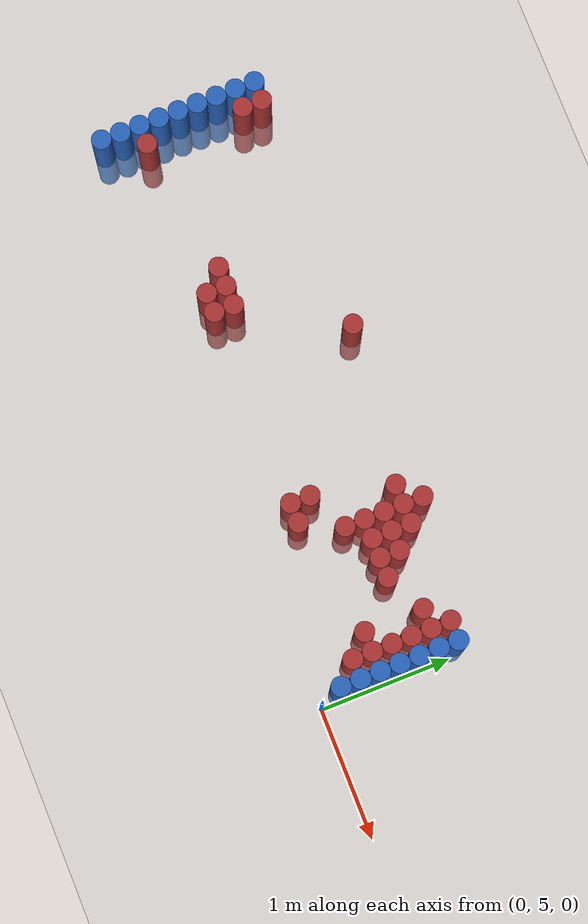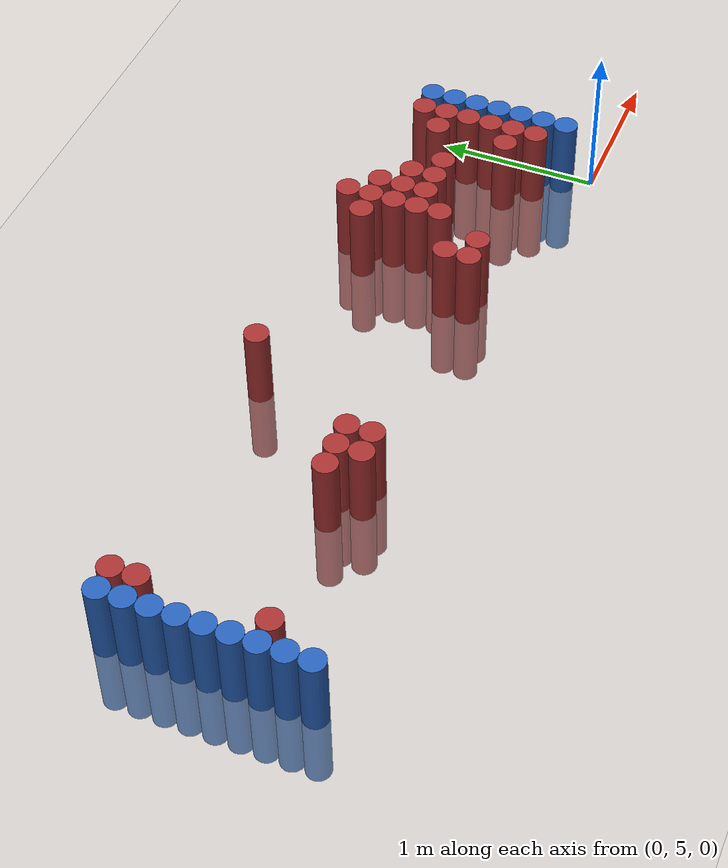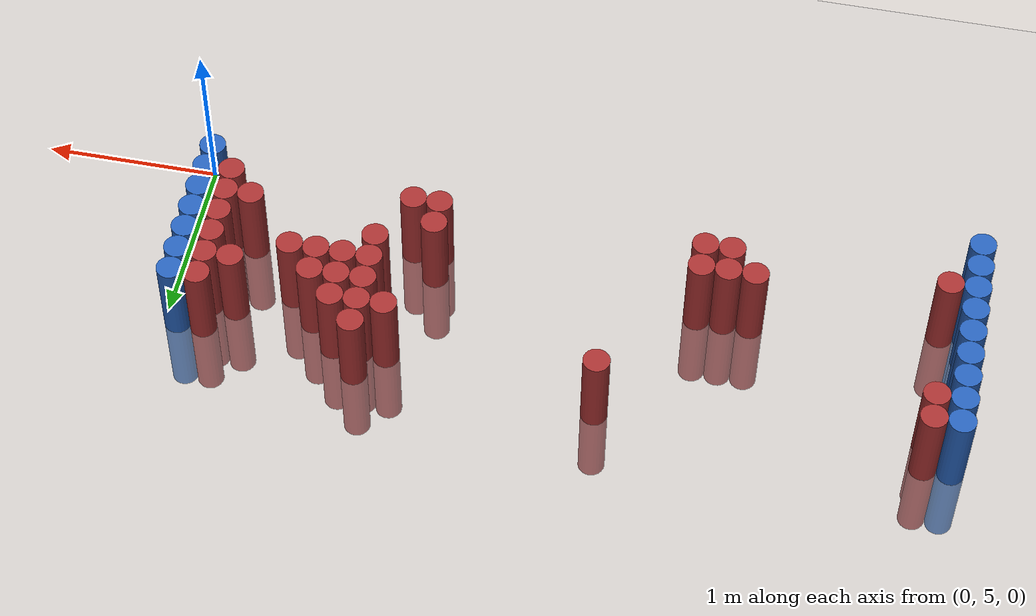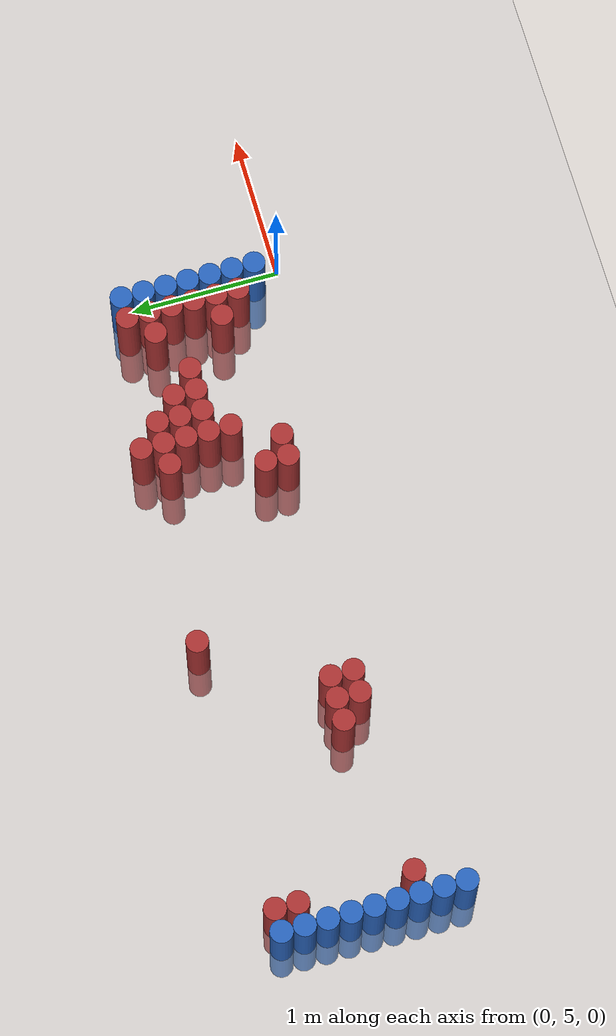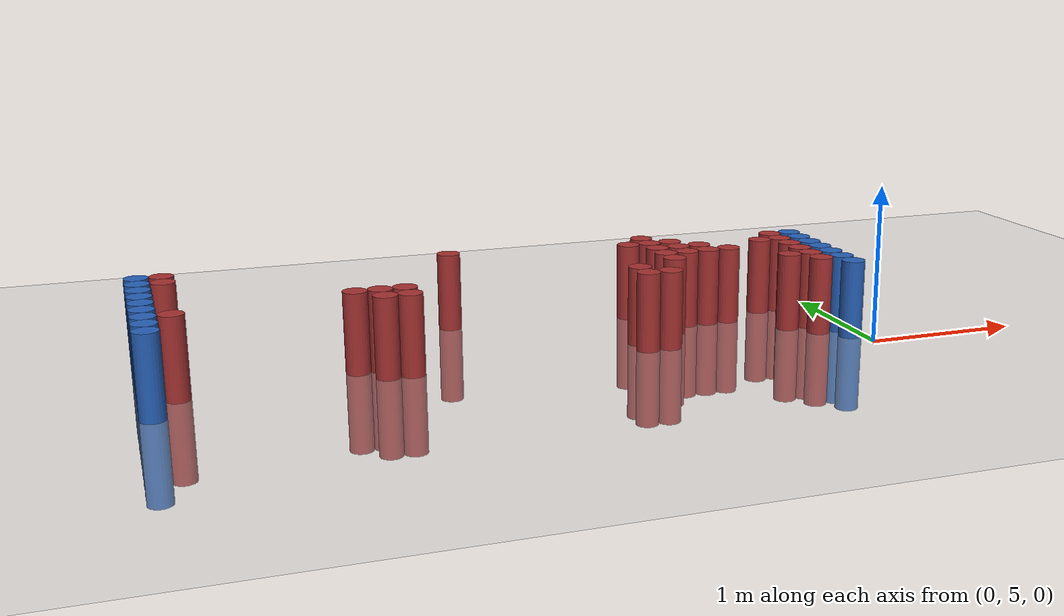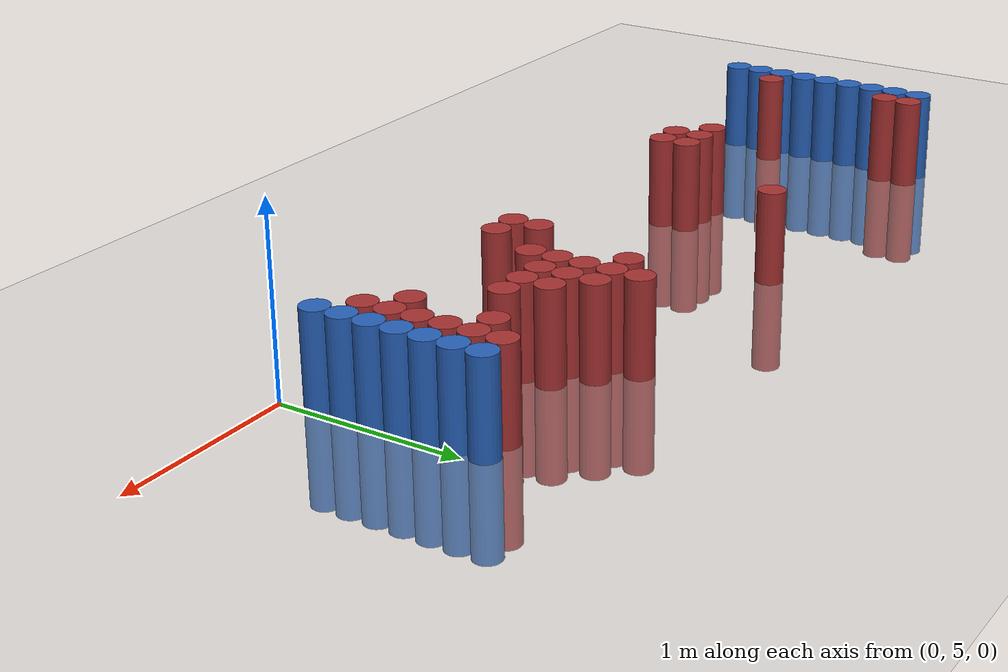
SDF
<sdf version="1.6">
 <world name="default">
  <model name="ground_plane">
   <static>1</static>
   <link name="link">
    <collision name="collision">
     <geometry><plane><normal>0 0 1</normal><size>100 100</size></plane></geometry>
     <surface><friction><ode><mu>100</mu><mu2>50</mu2></ode></friction></surface>
    </collision>
    <visual name="visual">
     <cast_shadows>0</cast_shadows>
     <geometry><plane><normal>0 0 1</normal><size>100 100</size></plane></geometry>
     <material>
      <script><uri>file://media/materials/scripts/gazebo.material</uri><name>Gazebo/Grey</name></script>
     </material>
    </visual>
   </link>
  </model>
  <model name="unit_cylinder_95">
   <static>1</static>
   <pose>-4.425000 5.025000 0.000000 0.000000 0.000000 0.000000</pose>
   <link name="link">
    <inertial>
     <mass>1</mass>
     <inertia><ixx>0.145833</ixx><ixy>0</ixy><ixz>0</ixz><iyy>0.145833</iyy><iyz>0</iyz><izz>0.125</izz></inertia>
    </inertial>
    <collision name="collision">
     <geometry><cylinder><radius>0.075000</radius><length>1</length></cylinder></geometry>
    </collision>
    <visual name="visual">
     <geometry><cylinder><radius>0.075000</radius><length>1</length></cylinder></geometry>
     <material>
      <ambient>0.152000 0.379000 0.720000 1</ambient>
      <diffuse>0.152000 0.379000 0.720000 1</diffuse>
     </material>
     <material>
      <script><name>Gazebo/Grey</name><uri>file://media/materials/scripts/gazebo.material</uri></script>
     </material>
    </visual>
   </link>
  </model>
  <model name="unit_cylinder_96">
   <static>1</static>
   <pose>-4.425000 5.175000 0.000000 0.000000 0.000000 0.000000</pose>
   <link name="link">
    <inertial>
     <mass>1</mass>
     <inertia><ixx>0.145833</ixx><ixy>0</ixy><ixz>0</ixz><iyy>0.145833</iyy><iyz>0</iyz><izz>0.125</izz></inertia>
    </inertial>
    <collision name="collision">
     <geometry><cylinder><radius>0.075000</radius><length>1</length></cylinder></geometry>
    </collision>
    <visual name="visual">
     <geometry><cylinder><radius>0.075000</radius><length>1</length></cylinder></geometry>
     <material>
      <ambient>0.152000 0.379000 0.720000 1</ambient>
      <diffuse>0.152000 0.379000 0.720000 1</diffuse>
     </material>
     <material>
      <script><name>Gazebo/Grey</name><uri>file://media/materials/scripts/gazebo.material</uri></script>
     </material>
    </visual>
   </link>
  </model>
  <model name="unit_cylinder_97">
   <static>1</static>
   <pose>-4.425000 5.325000 0.000000 0.000000 0.000000 0.000000</pose>
   <link name="link">
    <inertial>
     <mass>1</mass>
     <inertia><ixx>0.145833</ixx><ixy>0</ixy><ixz>0</ixz><iyy>0.145833</iyy><iyz>0</iyz><izz>0.125</izz></inertia>
    </inertial>
    <collision name="collision">
     <geometry><cylinder><radius>0.075000</radius><length>1</length></cylinder></geometry>
    </collision>
    <visual name="visual">
     <geometry><cylinder><radius>0.075000</radius><length>1</length></cylinder></geometry>
     <material>
      <ambient>0.152000 0.379000 0.720000 1</ambient>
      <diffuse>0.152000 0.379000 0.720000 1</diffuse>
     </material>
     <material>
      <script><name>Gazebo/Grey</name><uri>file://media/materials/scripts/gazebo.material</uri></script>
     </material>
    </visual>
   </link>
  </model>
  <model name="unit_cylinder_98">
   <static>1</static>
   <pose>-4.425000 5.475000 0.000000 0.000000 0.000000 0.000000</pose>
   <link name="link">
    <inertial>
     <mass>1</mass>
     <inertia><ixx>0.145833</ixx><ixy>0</ixy><ixz>0</ixz><iyy>0.145833</iyy><iyz>0</iyz><izz>0.125</izz></inertia>
    </inertial>
    <collision name="collision">
     <geometry><cylinder><radius>0.075000</radius><length>1</length></cylinder></geometry>
    </collision>
    <visual name="visual">
     <geometry><cylinder><radius>0.075000</radius><length>1</length></cylinder></geometry>
     <material>
      <ambient>0.152000 0.379000 0.720000 1</ambient>
      <diffuse>0.152000 0.379000 0.720000 1</diffuse>
     </material>
     <material>
      <script><name>Gazebo/Grey</name><uri>file://media/materials/scripts/gazebo.material</uri></script>
     </material>
    </visual>
   </link>
  </model>
  <model name="unit_cylinder_99">
   <static>1</static>
   <pose>-4.425000 5.625000 0.000000 0.000000 0.000000 0.000000</pose>
   <link name="link">
    <inertial>
     <mass>1</mass>
     <inertia><ixx>0.145833</ixx><ixy>0</ixy><ixz>0</ixz><iyy>0.145833</iyy><iyz>0</iyz><izz>0.125</izz></inertia>
    </inertial>
    <collision name="collision">
     <geometry><cylinder><radius>0.075000</radius><length>1</length></cylinder></geometry>
    </collision>
    <visual name="visual">
     <geometry><cylinder><radius>0.075000</radius><length>1</length></cylinder></geometry>
     <material>
      <ambient>0.152000 0.379000 0.720000 1</ambient>
      <diffuse>0.152000 0.379000 0.720000 1</diffuse>
     </material>
     <material>
      <script><name>Gazebo/Grey</name><uri>file://media/materials/scripts/gazebo.material</uri></script>
     </material>
    </visual>
   </link>
  </model>
  <model name="unit_cylinder_100">
   <static>1</static>
   <pose>-4.425000 5.775000 0.000000 0.000000 0.000000 0.000000</pose>
   <link name="link">
    <inertial>
     <mass>1</mass>
     <inertia><ixx>0.145833</ixx><ixy>0</ixy><ixz>0</ixz><iyy>0.145833</iyy><iyz>0</iyz><izz>0.125</izz></inertia>
    </inertial>
    <collision name="collision">
     <geometry><cylinder><radius>0.075000</radius><length>1</length></cylinder></geometry>
    </collision>
    <visual name="visual">
     <geometry><cylinder><radius>0.075000</radius><length>1</length></cylinder></geometry>
     <material>
      <ambient>0.152000 0.379000 0.720000 1</ambient>
      <diffuse>0.152000 0.379000 0.720000 1</diffuse>
     </material>
     <material>
      <script><name>Gazebo/Grey</name><uri>file://media/materials/scripts/gazebo.material</uri></script>
     </material>
    </visual>
   </link>
  </model>
  <model name="unit_cylinder_101">
   <static>1</static>
   <pose>-4.425000 5.925000 0.000000 0.000000 0.000000 0.000000</pose>
   <link name="link">
    <inertial>
     <mass>1</mass>
     <inertia><ixx>0.145833</ixx><ixy>0</ixy><ixz>0</ixz><iyy>0.145833</iyy><iyz>0</iyz><izz>0.125</izz></inertia>
    </inertial>
    <collision name="collision">
     <geometry><cylinder><radius>0.075000</radius><length>1</length></cylinder></geometry>
    </collision>
    <visual name="visual">
     <geometry><cylinder><radius>0.075000</radius><length>1</length></cylinder></geometry>
     <material>
      <ambient>0.152000 0.379000 0.720000 1</ambient>
      <diffuse>0.152000 0.379000 0.720000 1</diffuse>
     </material>
     <material>
      <script><name>Gazebo/Grey</name><uri>file://media/materials/scripts/gazebo.material</uri></script>
     </material>
    </visual>
   </link>
  </model>
  <model name="unit_cylinder_102">
   <static>1</static>
   <pose>-4.425000 6.075000 0.000000 0.000000 0.000000 0.000000</pose>
   <link name="link">
    <inertial>
     <mass>1</mass>
     <inertia><ixx>0.145833</ixx><ixy>0</ixy><ixz>0</ixz><iyy>0.145833</iyy><iyz>0</iyz><izz>0.125</izz></inertia>
    </inertial>
    <collision name="collision">
     <geometry><cylinder><radius>0.075000</radius><length>1</length></cylinder></geometry>
    </collision>
    <visual name="visual">
     <geometry><cylinder><radius>0.075000</radius><length>1</length></cylinder></geometry>
     <material>
      <ambient>0.152000 0.379000 0.720000 1</ambient>
      <diffuse>0.152000 0.379000 0.720000 1</diffuse>
     </material>
     <material>
      <script><name>Gazebo/Grey</name><uri>file://media/materials/scripts/gazebo.material</uri></script>
     </material>
    </visual>
   </link>
  </model>
  <model name="unit_cylinder_103">
   <static>1</static>
   <pose>-4.425000 6.225000 0.000000 0.000000 0.000000 0.000000</pose>
   <link name="link">
    <inertial>
     <mass>1</mass>
     <inertia><ixx>0.145833</ixx><ixy>0</ixy><ixz>0</ixz><iyy>0.145833</iyy><iyz>0</iyz><izz>0.125</izz></inertia>
    </inertial>
    <collision name="collision">
     <geometry><cylinder><radius>0.075000</radius><length>1</length></cylinder></geometry>
    </collision>
    <visual name="visual">
     <geometry><cylinder><radius>0.075000</radius><length>1</length></cylinder></geometry>
     <material>
      <ambient>0.152000 0.379000 0.720000 1</ambient>
      <diffuse>0.152000 0.379000 0.720000 1</diffuse>
     </material>
     <material>
      <script><name>Gazebo/Grey</name><uri>file://media/materials/scripts/gazebo.material</uri></script>
     </material>
    </visual>
   </link>
  </model>
  <model name="unit_cylinder_126">
   <static>1</static>
   <pose>-4.275000 5.325000 0.000000 0.000000 0.000000 0.000000</pose>
   <link name="link">
    <inertial>
     <mass>1</mass>
     <inertia><ixx>0.145833</ixx><ixy>0</ixy><ixz>0</ixz><iyy>0.145833</iyy><iyz>0</iyz><izz>0.125</izz></inertia>
    </inertial>
    <collision name="collision">
     <geometry><cylinder><radius>0.075000</radius><length>1</length></cylinder></geometry>
    </collision>
    <visual name="visual">
     <geometry><cylinder><radius>0.075000</radius><length>1</length></cylinder></geometry>
     <material>
      <ambient>0.648000 0.192000 0.192000 1</ambient>
      <diffuse>0.648000 0.192000 0.192000 1</diffuse>
     </material>
     <material>
      <script><name>Gazebo/Grey</name><uri>file://media/materials/scripts/gazebo.material</uri></script>
     </material>
    </visual>
   </link>
  </model>
  <model name="unit_cylinder_127">
   <static>1</static>
   <pose>-4.275000 6.075000 0.000000 0.000000 0.000000 0.000000</pose>
   <link name="link">
    <inertial>
     <mass>1</mass>
     <inertia><ixx>0.145833</ixx><ixy>0</ixy><ixz>0</ixz><iyy>0.145833</iyy><iyz>0</iyz><izz>0.125</izz></inertia>
    </inertial>
    <collision name="collision">
     <geometry><cylinder><radius>0.075000</radius><length>1</length></cylinder></geometry>
    </collision>
    <visual name="visual">
     <geometry><cylinder><radius>0.075000</radius><length>1</length></cylinder></geometry>
     <material>
      <ambient>0.648000 0.192000 0.192000 1</ambient>
      <diffuse>0.648000 0.192000 0.192000 1</diffuse>
     </material>
     <material>
      <script><name>Gazebo/Grey</name><uri>file://media/materials/scripts/gazebo.material</uri></script>
     </material>
    </visual>
   </link>
  </model>
  <model name="unit_cylinder_128">
   <static>1</static>
   <pose>-4.275000 6.225000 0.000000 0.000000 0.000000 0.000000</pose>
   <link name="link">
    <inertial>
     <mass>1</mass>
     <inertia><ixx>0.145833</ixx><ixy>0</ixy><ixz>0</ixz><iyy>0.145833</iyy><iyz>0</iyz><izz>0.125</izz></inertia>
    </inertial>
    <collision name="collision">
     <geometry><cylinder><radius>0.075000</radius><length>1</length></cylinder></geometry>
    </collision>
    <visual name="visual">
     <geometry><cylinder><radius>0.075000</radius><length>1</length></cylinder></geometry>
     <material>
      <ambient>0.648000 0.192000 0.192000 1</ambient>
      <diffuse>0.648000 0.192000 0.192000 1</diffuse>
     </material>
     <material>
      <script><name>Gazebo/Grey</name><uri>file://media/materials/scripts/gazebo.material</uri></script>
     </material>
    </visual>
   </link>
  </model>
  <model name="unit_cylinder_151">
   <static>1</static>
   <pose>-3.225000 5.475000 0.000000 0.000000 0.000000 0.000000</pose>
   <link name="link">
    <inertial>
     <mass>1</mass>
     <inertia><ixx>0.145833</ixx><ixy>0</ixy><ixz>0</ixz><iyy>0.145833</iyy><iyz>0</iyz><izz>0.125</izz></inertia>
    </inertial>
    <collision name="collision">
     <geometry><cylinder><radius>0.075000</radius><length>1</length></cylinder></geometry>
    </collision>
    <visual name="visual">
     <geometry><cylinder><radius>0.075000</radius><length>1</length></cylinder></geometry>
     <material>
      <ambient>0.648000 0.192000 0.192000 1</ambient>
      <diffuse>0.648000 0.192000 0.192000 1</diffuse>
     </material>
     <material>
      <script><name>Gazebo/Grey</name><uri>file://media/materials/scripts/gazebo.material</uri></script>
     </material>
    </visual>
   </link>
  </model>
  <model name="unit_cylinder_152">
   <static>1</static>
   <pose>-3.075000 5.325000 0.000000 0.000000 0.000000 0.000000</pose>
   <link name="link">
    <inertial>
     <mass>1</mass>
     <inertia><ixx>0.145833</ixx><ixy>0</ixy><ixz>0</ixz><iyy>0.145833</iyy><iyz>0</iyz><izz>0.125</izz></inertia>
    </inertial>
    <collision name="collision">
     <geometry><cylinder><radius>0.075000</radius><length>1</length></cylinder></geometry>
    </collision>
    <visual name="visual">
     <geometry><cylinder><radius>0.075000</radius><length>1</length></cylinder></geometry>
     <material>
      <ambient>0.648000 0.192000 0.192000 1</ambient>
      <diffuse>0.648000 0.192000 0.192000 1</diffuse>
     </material>
     <material>
      <script><name>Gazebo/Grey</name><uri>file://media/materials/scripts/gazebo.material</uri></script>
     </material>
    </visual>
   </link>
  </model>
  <model name="unit_cylinder_153">
   <static>1</static>
   <pose>-3.075000 5.475000 0.000000 0.000000 0.000000 0.000000</pose>
   <link name="link">
    <inertial>
     <mass>1</mass>
     <inertia><ixx>0.145833</ixx><ixy>0</ixy><ixz>0</ixz><iyy>0.145833</iyy><iyz>0</iyz><izz>0.125</izz></inertia>
    </inertial>
    <collision name="collision">
     <geometry><cylinder><radius>0.075000</radius><length>1</length></cylinder></geometry>
    </collision>
    <visual name="visual">
     <geometry><cylinder><radius>0.075000</radius><length>1</length></cylinder></geometry>
     <material>
      <ambient>0.648000 0.192000 0.192000 1</ambient>
      <diffuse>0.648000 0.192000 0.192000 1</diffuse>
     </material>
     <material>
      <script><name>Gazebo/Grey</name><uri>file://media/materials/scripts/gazebo.material</uri></script>
     </material>
    </visual>
   </link>
  </model>
  <model name="unit_cylinder_154">
   <static>1</static>
   <pose>-2.925000 5.325000 0.000000 0.000000 0.000000 0.000000</pose>
   <link name="link">
    <inertial>
     <mass>1</mass>
     <inertia><ixx>0.145833</ixx><ixy>0</ixy><ixz>0</ixz><iyy>0.145833</iyy><iyz>0</iyz><izz>0.125</izz></inertia>
    </inertial>
    <collision name="collision">
     <geometry><cylinder><radius>0.075000</radius><length>1</length></cylinder></geometry>
    </collision>
    <visual name="visual">
     <geometry><cylinder><radius>0.075000</radius><length>1</length></cylinder></geometry>
     <material>
      <ambient>0.648000 0.192000 0.192000 1</ambient>
      <diffuse>0.648000 0.192000 0.192000 1</diffuse>
     </material>
     <material>
      <script><name>Gazebo/Grey</name><uri>file://media/materials/scripts/gazebo.material</uri></script>
     </material>
    </visual>
   </link>
  </model>
  <model name="unit_cylinder_155">
   <static>1</static>
   <pose>-2.925000 5.475000 0.000000 0.000000 0.000000 0.000000</pose>
   <link name="link">
    <inertial>
     <mass>1</mass>
     <inertia><ixx>0.145833</ixx><ixy>0</ixy><ixz>0</ixz><iyy>0.145833</iyy><iyz>0</iyz><izz>0.125</izz></inertia>
    </inertial>
    <collision name="collision">
     <geometry><cylinder><radius>0.075000</radius><length>1</length></cylinder></geometry>
    </collision>
    <visual name="visual">
     <geometry><cylinder><radius>0.075000</radius><length>1</length></cylinder></geometry>
     <material>
      <ambient>0.648000 0.192000 0.192000 1</ambient>
      <diffuse>0.648000 0.192000 0.192000 1</diffuse>
     </material>
     <material>
      <script><name>Gazebo/Grey</name><uri>file://media/materials/scripts/gazebo.material</uri></script>
     </material>
    </visual>
   </link>
  </model>
  <model name="unit_cylinder_159">
   <static>1</static>
   <pose>-2.475000 6.225000 0.000000 0.000000 0.000000 0.000000</pose>
   <link name="link">
    <inertial>
     <mass>1</mass>
     <inertia><ixx>0.145833</ixx><ixy>0</ixy><ixz>0</ixz><iyy>0.145833</iyy><iyz>0</iyz><izz>0.125</izz></inertia>
    </inertial>
    <collision name="collision">
     <geometry><cylinder><radius>0.075000</radius><length>1</length></cylinder></geometry>
    </collision>
    <visual name="visual">
     <geometry><cylinder><radius>0.075000</radius><length>1</length></cylinder></geometry>
     <material>
      <ambient>0.648000 0.192000 0.192000 1</ambient>
      <diffuse>0.648000 0.192000 0.192000 1</diffuse>
     </material>
     <material>
      <script><name>Gazebo/Grey</name><uri>file://media/materials/scripts/gazebo.material</uri></script>
     </material>
    </visual>
   </link>
  </model>
  <model name="unit_cylinder_196">
   <static>1</static>
   <pose>-1.425000 5.325000 0.000000 0.000000 0.000000 0.000000</pose>
   <link name="link">
    <inertial>
     <mass>1</mass>
     <inertia><ixx>0.145833</ixx><ixy>0</ixy><ixz>0</ixz><iyy>0.145833</iyy><iyz>0</iyz><izz>0.125</izz></inertia>
    </inertial>
    <collision name="collision">
     <geometry><cylinder><radius>0.075000</radius><length>1</length></cylinder></geometry>
    </collision>
    <visual name="visual">
     <geometry><cylinder><radius>0.075000</radius><length>1</length></cylinder></geometry>
     <material>
      <ambient>0.648000 0.192000 0.192000 1</ambient>
      <diffuse>0.648000 0.192000 0.192000 1</diffuse>
     </material>
     <material>
      <script><name>Gazebo/Grey</name><uri>file://media/materials/scripts/gazebo.material</uri></script>
     </material>
    </visual>
   </link>
  </model>
  <model name="unit_cylinder_197">
   <static>1</static>
   <pose>-1.425000 5.475000 0.000000 0.000000 0.000000 0.000000</pose>
   <link name="link">
    <inertial>
     <mass>1</mass>
     <inertia><ixx>0.145833</ixx><ixy>0</ixy><ixz>0</ixz><iyy>0.145833</iyy><iyz>0</iyz><izz>0.125</izz></inertia>
    </inertial>
    <collision name="collision">
     <geometry><cylinder><radius>0.075000</radius><length>1</length></cylinder></geometry>
    </collision>
    <visual name="visual">
     <geometry><cylinder><radius>0.075000</radius><length>1</length></cylinder></geometry>
     <material>
      <ambient>0.648000 0.192000 0.192000 1</ambient>
      <diffuse>0.648000 0.192000 0.192000 1</diffuse>
     </material>
     <material>
      <script><name>Gazebo/Grey</name><uri>file://media/materials/scripts/gazebo.material</uri></script>
     </material>
    </visual>
   </link>
  </model>
  <model name="unit_cylinder_203">
   <static>1</static>
   <pose>-1.275000 5.325000 0.000000 0.000000 0.000000 0.000000</pose>
   <link name="link">
    <inertial>
     <mass>1</mass>
     <inertia><ixx>0.145833</ixx><ixy>0</ixy><ixz>0</ixz><iyy>0.145833</iyy><iyz>0</iyz><izz>0.125</izz></inertia>
    </inertial>
    <collision name="collision">
     <geometry><cylinder><radius>0.075000</radius><length>1</length></cylinder></geometry>
    </collision>
    <visual name="visual">
     <geometry><cylinder><radius>0.075000</radius><length>1</length></cylinder></geometry>
     <material>
      <ambient>0.648000 0.192000 0.192000 1</ambient>
      <diffuse>0.648000 0.192000 0.192000 1</diffuse>
     </material>
     <material>
      <script><name>Gazebo/Grey</name><uri>file://media/materials/scripts/gazebo.material</uri></script>
     </material>
    </visual>
   </link>
  </model>
  <model name="unit_cylinder_204">
   <static>1</static>
   <pose>-1.275000 6.075000 0.000000 0.000000 0.000000 0.000000</pose>
   <link name="link">
    <inertial>
     <mass>1</mass>
     <inertia><ixx>0.145833</ixx><ixy>0</ixy><ixz>0</ixz><iyy>0.145833</iyy><iyz>0</iyz><izz>0.125</izz></inertia>
    </inertial>
    <collision name="collision">
     <geometry><cylinder><radius>0.075000</radius><length>1</length></cylinder></geometry>
    </collision>
    <visual name="visual">
     <geometry><cylinder><radius>0.075000</radius><length>1</length></cylinder></geometry>
     <material>
      <ambient>0.648000 0.192000 0.192000 1</ambient>
      <diffuse>0.648000 0.192000 0.192000 1</diffuse>
     </material>
     <material>
      <script><name>Gazebo/Grey</name><uri>file://media/materials/scripts/gazebo.material</uri></script>
     </material>
    </visual>
   </link>
  </model>
  <model name="unit_cylinder_208">
   <static>1</static>
   <pose>-1.125000 5.625000 0.000000 0.000000 0.000000 0.000000</pose>
   <link name="link">
    <inertial>
     <mass>1</mass>
     <inertia><ixx>0.145833</ixx><ixy>0</ixy><ixz>0</ixz><iyy>0.145833</iyy><iyz>0</iyz><izz>0.125</izz></inertia>
    </inertial>
    <collision name="collision">
     <geometry><cylinder><radius>0.075000</radius><length>1</length></cylinder></geometry>
    </collision>
    <visual name="visual">
     <geometry><cylinder><radius>0.075000</radius><length>1</length></cylinder></geometry>
     <material>
      <ambient>0.648000 0.192000 0.192000 1</ambient>
      <diffuse>0.648000 0.192000 0.192000 1</diffuse>
     </material>
     <material>
      <script><name>Gazebo/Grey</name><uri>file://media/materials/scripts/gazebo.material</uri></script>
     </material>
    </visual>
   </link>
  </model>
  <model name="unit_cylinder_209">
   <static>1</static>
   <pose>-1.125000 5.775000 0.000000 0.000000 0.000000 0.000000</pose>
   <link name="link">
    <inertial>
     <mass>1</mass>
     <inertia><ixx>0.145833</ixx><ixy>0</ixy><ixz>0</ixz><iyy>0.145833</iyy><iyz>0</iyz><izz>0.125</izz></inertia>
    </inertial>
    <collision name="collision">
     <geometry><cylinder><radius>0.075000</radius><length>1</length></cylinder></geometry>
    </collision>
    <visual name="visual">
     <geometry><cylinder><radius>0.075000</radius><length>1</length></cylinder></geometry>
     <material>
      <ambient>0.648000 0.192000 0.192000 1</ambient>
      <diffuse>0.648000 0.192000 0.192000 1</diffuse>
     </material>
     <material>
      <script><name>Gazebo/Grey</name><uri>file://media/materials/scripts/gazebo.material</uri></script>
     </material>
    </visual>
   </link>
  </model>
  <model name="unit_cylinder_210">
   <static>1</static>
   <pose>-1.125000 5.925000 0.000000 0.000000 0.000000 0.000000</pose>
   <link name="link">
    <inertial>
     <mass>1</mass>
     <inertia><ixx>0.145833</ixx><ixy>0</ixy><ixz>0</ixz><iyy>0.145833</iyy><iyz>0</iyz><izz>0.125</izz></inertia>
    </inertial>
    <collision name="collision">
     <geometry><cylinder><radius>0.075000</radius><length>1</length></cylinder></geometry>
    </collision>
    <visual name="visual">
     <geometry><cylinder><radius>0.075000</radius><length>1</length></cylinder></geometry>
     <material>
      <ambient>0.648000 0.192000 0.192000 1</ambient>
      <diffuse>0.648000 0.192000 0.192000 1</diffuse>
     </material>
     <material>
      <script><name>Gazebo/Grey</name><uri>file://media/materials/scripts/gazebo.material</uri></script>
     </material>
    </visual>
   </link>
  </model>
  <model name="unit_cylinder_211">
   <static>1</static>
   <pose>-1.125000 6.075000 0.000000 0.000000 0.000000 0.000000</pose>
   <link name="link">
    <inertial>
     <mass>1</mass>
     <inertia><ixx>0.145833</ixx><ixy>0</ixy><ixz>0</ixz><iyy>0.145833</iyy><iyz>0</iyz><izz>0.125</izz></inertia>
    </inertial>
    <collision name="collision">
     <geometry><cylinder><radius>0.075000</radius><length>1</length></cylinder></geometry>
    </collision>
    <visual name="visual">
     <geometry><cylinder><radius>0.075000</radius><length>1</length></cylinder></geometry>
     <material>
      <ambient>0.648000 0.192000 0.192000 1</ambient>
      <diffuse>0.648000 0.192000 0.192000 1</diffuse>
     </material>
     <material>
      <script><name>Gazebo/Grey</name><uri>file://media/materials/scripts/gazebo.material</uri></script>
     </material>
    </visual>
   </link>
  </model>
  <model name="unit_cylinder_212">
   <static>1</static>
   <pose>-1.125000 6.225000 0.000000 0.000000 0.000000 0.000000</pose>
   <link name="link">
    <inertial>
     <mass>1</mass>
     <inertia><ixx>0.145833</ixx><ixy>0</ixy><ixz>0</ixz><iyy>0.145833</iyy><iyz>0</iyz><izz>0.125</izz></inertia>
    </inertial>
    <collision name="collision">
     <geometry><cylinder><radius>0.075000</radius><length>1</length></cylinder></geometry>
    </collision>
    <visual name="visual">
     <geometry><cylinder><radius>0.075000</radius><length>1</length></cylinder></geometry>
     <material>
      <ambient>0.648000 0.192000 0.192000 1</ambient>
      <diffuse>0.648000 0.192000 0.192000 1</diffuse>
     </material>
     <material>
      <script><name>Gazebo/Grey</name><uri>file://media/materials/scripts/gazebo.material</uri></script>
     </material>
    </visual>
   </link>
  </model>
  <model name="unit_cylinder_215">
   <static>1</static>
   <pose>-0.975000 5.775000 0.000000 0.000000 0.000000 0.000000</pose>
   <link name="link">
    <inertial>
     <mass>1</mass>
     <inertia><ixx>0.145833</ixx><ixy>0</ixy><ixz>0</ixz><iyy>0.145833</iyy><iyz>0</iyz><izz>0.125</izz></inertia>
    </inertial>
    <collision name="collision">
     <geometry><cylinder><radius>0.075000</radius><length>1</length></cylinder></geometry>
    </collision>
    <visual name="visual">
     <geometry><cylinder><radius>0.075000</radius><length>1</length></cylinder></geometry>
     <material>
      <ambient>0.648000 0.192000 0.192000 1</ambient>
      <diffuse>0.648000 0.192000 0.192000 1</diffuse>
     </material>
     <material>
      <script><name>Gazebo/Grey</name><uri>file://media/materials/scripts/gazebo.material</uri></script>
     </material>
    </visual>
   </link>
  </model>
  <model name="unit_cylinder_216">
   <static>1</static>
   <pose>-0.975000 5.925000 0.000000 0.000000 0.000000 0.000000</pose>
   <link name="link">
    <inertial>
     <mass>1</mass>
     <inertia><ixx>0.145833</ixx><ixy>0</ixy><ixz>0</ixz><iyy>0.145833</iyy><iyz>0</iyz><izz>0.125</izz></inertia>
    </inertial>
    <collision name="collision">
     <geometry><cylinder><radius>0.075000</radius><length>1</length></cylinder></geometry>
    </collision>
    <visual name="visual">
     <geometry><cylinder><radius>0.075000</radius><length>1</length></cylinder></geometry>
     <material>
      <ambient>0.648000 0.192000 0.192000 1</ambient>
      <diffuse>0.648000 0.192000 0.192000 1</diffuse>
     </material>
     <material>
      <script><name>Gazebo/Grey</name><uri>file://media/materials/scripts/gazebo.material</uri></script>
     </material>
    </visual>
   </link>
  </model>
  <model name="unit_cylinder_217">
   <static>1</static>
   <pose>-0.975000 6.075000 0.000000 0.000000 0.000000 0.000000</pose>
   <link name="link">
    <inertial>
     <mass>1</mass>
     <inertia><ixx>0.145833</ixx><ixy>0</ixy><ixz>0</ixz><iyy>0.145833</iyy><iyz>0</iyz><izz>0.125</izz></inertia>
    </inertial>
    <collision name="collision">
     <geometry><cylinder><radius>0.075000</radius><length>1</length></cylinder></geometry>
    </collision>
    <visual name="visual">
     <geometry><cylinder><radius>0.075000</radius><length>1</length></cylinder></geometry>
     <material>
      <ambient>0.648000 0.192000 0.192000 1</ambient>
      <diffuse>0.648000 0.192000 0.192000 1</diffuse>
     </material>
     <material>
      <script><name>Gazebo/Grey</name><uri>file://media/materials/scripts/gazebo.material</uri></script>
     </material>
    </visual>
   </link>
  </model>
  <model name="unit_cylinder_219">
   <static>1</static>
   <pose>-0.825000 5.775000 0.000000 0.000000 0.000000 0.000000</pose>
   <link name="link">
    <inertial>
     <mass>1</mass>
     <inertia><ixx>0.145833</ixx><ixy>0</ixy><ixz>0</ixz><iyy>0.145833</iyy><iyz>0</iyz><izz>0.125</izz></inertia>
    </inertial>
    <collision name="collision">
     <geometry><cylinder><radius>0.075000</radius><length>1</length></cylinder></geometry>
    </collision>
    <visual name="visual">
     <geometry><cylinder><radius>0.075000</radius><length>1</length></cylinder></geometry>
     <material>
      <ambient>0.648000 0.192000 0.192000 1</ambient>
      <diffuse>0.648000 0.192000 0.192000 1</diffuse>
     </material>
     <material>
      <script><name>Gazebo/Grey</name><uri>file://media/materials/scripts/gazebo.material</uri></script>
     </material>
    </visual>
   </link>
  </model>
  <model name="unit_cylinder_220">
   <static>1</static>
   <pose>-0.825000 5.925000 0.000000 0.000000 0.000000 0.000000</pose>
   <link name="link">
    <inertial>
     <mass>1</mass>
     <inertia><ixx>0.145833</ixx><ixy>0</ixy><ixz>0</ixz><iyy>0.145833</iyy><iyz>0</iyz><izz>0.125</izz></inertia>
    </inertial>
    <collision name="collision">
     <geometry><cylinder><radius>0.075000</radius><length>1</length></cylinder></geometry>
    </collision>
    <visual name="visual">
     <geometry><cylinder><radius>0.075000</radius><length>1</length></cylinder></geometry>
     <material>
      <ambient>0.648000 0.192000 0.192000 1</ambient>
      <diffuse>0.648000 0.192000 0.192000 1</diffuse>
     </material>
     <material>
      <script><name>Gazebo/Grey</name><uri>file://media/materials/scripts/gazebo.material</uri></script>
     </material>
    </visual>
   </link>
  </model>
  <model name="unit_cylinder_221">
   <static>1</static>
   <pose>-0.675000 5.775000 0.000000 0.000000 0.000000 0.000000</pose>
   <link name="link">
    <inertial>
     <mass>1</mass>
     <inertia><ixx>0.145833</ixx><ixy>0</ixy><ixz>0</ixz><iyy>0.145833</iyy><iyz>0</iyz><izz>0.125</izz></inertia>
    </inertial>
    <collision name="collision">
     <geometry><cylinder><radius>0.075000</radius><length>1</length></cylinder></geometry>
    </collision>
    <visual name="visual">
     <geometry><cylinder><radius>0.075000</radius><length>1</length></cylinder></geometry>
     <material>
      <ambient>0.648000 0.192000 0.192000 1</ambient>
      <diffuse>0.648000 0.192000 0.192000 1</diffuse>
     </material>
     <material>
      <script><name>Gazebo/Grey</name><uri>file://media/materials/scripts/gazebo.material</uri></script>
     </material>
    </visual>
   </link>
  </model>
  <model name="unit_cylinder_227">
   <static>1</static>
   <pose>-0.375000 5.475000 0.000000 0.000000 0.000000 0.000000</pose>
   <link name="link">
    <inertial>
     <mass>1</mass>
     <inertia><ixx>0.145833</ixx><ixy>0</ixy><ixz>0</ixz><iyy>0.145833</iyy><iyz>0</iyz><izz>0.125</izz></inertia>
    </inertial>
    <collision name="collision">
     <geometry><cylinder><radius>0.075000</radius><length>1</length></cylinder></geometry>
    </collision>
    <visual name="visual">
     <geometry><cylinder><radius>0.075000</radius><length>1</length></cylinder></geometry>
     <material>
      <ambient>0.648000 0.192000 0.192000 1</ambient>
      <diffuse>0.648000 0.192000 0.192000 1</diffuse>
     </material>
     <material>
      <script><name>Gazebo/Grey</name><uri>file://media/materials/scripts/gazebo.material</uri></script>
     </material>
    </visual>
   </link>
  </model>
  <model name="unit_cylinder_228">
   <static>1</static>
   <pose>-0.375000 5.925000 0.000000 0.000000 0.000000 0.000000</pose>
   <link name="link">
    <inertial>
     <mass>1</mass>
     <inertia><ixx>0.145833</ixx><ixy>0</ixy><ixz>0</ixz><iyy>0.145833</iyy><iyz>0</iyz><izz>0.125</izz></inertia>
    </inertial>
    <collision name="collision">
     <geometry><cylinder><radius>0.075000</radius><length>1</length></cylinder></geometry>
    </collision>
    <visual name="visual">
     <geometry><cylinder><radius>0.075000</radius><length>1</length></cylinder></geometry>
     <material>
      <ambient>0.648000 0.192000 0.192000 1</ambient>
      <diffuse>0.648000 0.192000 0.192000 1</diffuse>
     </material>
     <material>
      <script><name>Gazebo/Grey</name><uri>file://media/materials/scripts/gazebo.material</uri></script>
     </material>
    </visual>
   </link>
  </model>
  <model name="unit_cylinder_236">
   <static>1</static>
   <pose>-0.225000 5.325000 0.000000 0.000000 0.000000 0.000000</pose>
   <link name="link">
    <inertial>
     <mass>1</mass>
     <inertia><ixx>0.145833</ixx><ixy>0</ixy><ixz>0</ixz><iyy>0.145833</iyy><iyz>0</iyz><izz>0.125</izz></inertia>
    </inertial>
    <collision name="collision">
     <geometry><cylinder><radius>0.075000</radius><length>1</length></cylinder></geometry>
    </collision>
    <visual name="visual">
     <geometry><cylinder><radius>0.075000</radius><length>1</length></cylinder></geometry>
     <material>
      <ambient>0.648000 0.192000 0.192000 1</ambient>
      <diffuse>0.648000 0.192000 0.192000 1</diffuse>
     </material>
     <material>
      <script><name>Gazebo/Grey</name><uri>file://media/materials/scripts/gazebo.material</uri></script>
     </material>
    </visual>
   </link>
  </model>
  <model name="unit_cylinder_237">
   <static>1</static>
   <pose>-0.225000 5.475000 0.000000 0.000000 0.000000 0.000000</pose>
   <link name="link">
    <inertial>
     <mass>1</mass>
     <inertia><ixx>0.145833</ixx><ixy>0</ixy><ixz>0</ixz><iyy>0.145833</iyy><iyz>0</iyz><izz>0.125</izz></inertia>
    </inertial>
    <collision name="collision">
     <geometry><cylinder><radius>0.075000</radius><length>1</length></cylinder></geometry>
    </collision>
    <visual name="visual">
     <geometry><cylinder><radius>0.075000</radius><length>1</length></cylinder></geometry>
     <material>
      <ambient>0.648000 0.192000 0.192000 1</ambient>
      <diffuse>0.648000 0.192000 0.192000 1</diffuse>
     </material>
     <material>
      <script><name>Gazebo/Grey</name><uri>file://media/materials/scripts/gazebo.material</uri></script>
     </material>
    </visual>
   </link>
  </model>
  <model name="unit_cylinder_238">
   <static>1</static>
   <pose>-0.225000 5.625000 0.000000 0.000000 0.000000 0.000000</pose>
   <link name="link">
    <inertial>
     <mass>1</mass>
     <inertia><ixx>0.145833</ixx><ixy>0</ixy><ixz>0</ixz><iyy>0.145833</iyy><iyz>0</iyz><izz>0.125</izz></inertia>
    </inertial>
    <collision name="collision">
     <geometry><cylinder><radius>0.075000</radius><length>1</length></cylinder></geometry>
    </collision>
    <visual name="visual">
     <geometry><cylinder><radius>0.075000</radius><length>1</length></cylinder></geometry>
     <material>
      <ambient>0.648000 0.192000 0.192000 1</ambient>
      <diffuse>0.648000 0.192000 0.192000 1</diffuse>
     </material>
     <material>
      <script><name>Gazebo/Grey</name><uri>file://media/materials/scripts/gazebo.material</uri></script>
     </material>
    </visual>
   </link>
  </model>
  <model name="unit_cylinder_239">
   <static>1</static>
   <pose>-0.225000 5.775000 0.000000 0.000000 0.000000 0.000000</pose>
   <link name="link">
    <inertial>
     <mass>1</mass>
     <inertia><ixx>0.145833</ixx><ixy>0</ixy><ixz>0</ixz><iyy>0.145833</iyy><iyz>0</iyz><izz>0.125</izz></inertia>
    </inertial>
    <collision name="collision">
     <geometry><cylinder><radius>0.075000</radius><length>1</length></cylinder></geometry>
    </collision>
    <visual name="visual">
     <geometry><cylinder><radius>0.075000</radius><length>1</length></cylinder></geometry>
     <material>
      <ambient>0.648000 0.192000 0.192000 1</ambient>
      <diffuse>0.648000 0.192000 0.192000 1</diffuse>
     </material>
     <material>
      <script><name>Gazebo/Grey</name><uri>file://media/materials/scripts/gazebo.material</uri></script>
     </material>
    </visual>
   </link>
  </model>
  <model name="unit_cylinder_240">
   <static>1</static>
   <pose>-0.225000 5.925000 0.000000 0.000000 0.000000 0.000000</pose>
   <link name="link">
    <inertial>
     <mass>1</mass>
     <inertia><ixx>0.145833</ixx><ixy>0</ixy><ixz>0</ixz><iyy>0.145833</iyy><iyz>0</iyz><izz>0.125</izz></inertia>
    </inertial>
    <collision name="collision">
     <geometry><cylinder><radius>0.075000</radius><length>1</length></cylinder></geometry>
    </collision>
    <visual name="visual">
     <geometry><cylinder><radius>0.075000</radius><length>1</length></cylinder></geometry>
     <material>
      <ambient>0.648000 0.192000 0.192000 1</ambient>
      <diffuse>0.648000 0.192000 0.192000 1</diffuse>
     </material>
     <material>
      <script><name>Gazebo/Grey</name><uri>file://media/materials/scripts/gazebo.material</uri></script>
     </material>
    </visual>
   </link>
  </model>
  <model name="unit_cylinder_241">
   <static>1</static>
   <pose>-0.225000 6.075000 0.000000 0.000000 0.000000 0.000000</pose>
   <link name="link">
    <inertial>
     <mass>1</mass>
     <inertia><ixx>0.145833</ixx><ixy>0</ixy><ixz>0</ixz><iyy>0.145833</iyy><iyz>0</iyz><izz>0.125</izz></inertia>
    </inertial>
    <collision name="collision">
     <geometry><cylinder><radius>0.075000</radius><length>1</length></cylinder></geometry>
    </collision>
    <visual name="visual">
     <geometry><cylinder><radius>0.075000</radius><length>1</length></cylinder></geometry>
     <material>
      <ambient>0.648000 0.192000 0.192000 1</ambient>
      <diffuse>0.648000 0.192000 0.192000 1</diffuse>
     </material>
     <material>
      <script><name>Gazebo/Grey</name><uri>file://media/materials/scripts/gazebo.material</uri></script>
     </material>
    </visual>
   </link>
  </model>
  <model name="unit_cylinder_256">
   <static>1</static>
   <pose>-0.075000 5.175000 0.000000 0.000000 0.000000 0.000000</pose>
   <link name="link">
    <inertial>
     <mass>1</mass>
     <inertia><ixx>0.145833</ixx><ixy>0</ixy><ixz>0</ixz><iyy>0.145833</iyy><iyz>0</iyz><izz>0.125</izz></inertia>
    </inertial>
    <collision name="collision">
     <geometry><cylinder><radius>0.075000</radius><length>1</length></cylinder></geometry>
    </collision>
    <visual name="visual">
     <geometry><cylinder><radius>0.075000</radius><length>1</length></cylinder></geometry>
     <material>
      <ambient>0.152000 0.379000 0.720000 1</ambient>
      <diffuse>0.152000 0.379000 0.720000 1</diffuse>
     </material>
     <material>
      <script><name>Gazebo/Grey</name><uri>file://media/materials/scripts/gazebo.material</uri></script>
     </material>
    </visual>
   </link>
  </model>
  <model name="unit_cylinder_257">
   <static>1</static>
   <pose>-0.075000 5.325000 0.000000 0.000000 0.000000 0.000000</pose>
   <link name="link">
    <inertial>
     <mass>1</mass>
     <inertia><ixx>0.145833</ixx><ixy>0</ixy><ixz>0</ixz><iyy>0.145833</iyy><iyz>0</iyz><izz>0.125</izz></inertia>
    </inertial>
    <collision name="collision">
     <geometry><cylinder><radius>0.075000</radius><length>1</length></cylinder></geometry>
    </collision>
    <visual name="visual">
     <geometry><cylinder><radius>0.075000</radius><length>1</length></cylinder></geometry>
     <material>
      <ambient>0.152000 0.379000 0.720000 1</ambient>
      <diffuse>0.152000 0.379000 0.720000 1</diffuse>
     </material>
     <material>
      <script><name>Gazebo/Grey</name><uri>file://media/materials/scripts/gazebo.material</uri></script>
     </material>
    </visual>
   </link>
  </model>
  <model name="unit_cylinder_258">
   <static>1</static>
   <pose>-0.075000 5.475000 0.000000 0.000000 0.000000 0.000000</pose>
   <link name="link">
    <inertial>
     <mass>1</mass>
     <inertia><ixx>0.145833</ixx><ixy>0</ixy><ixz>0</ixz><iyy>0.145833</iyy><iyz>0</iyz><izz>0.125</izz></inertia>
    </inertial>
    <collision name="collision">
     <geometry><cylinder><radius>0.075000</radius><length>1</length></cylinder></geometry>
    </collision>
    <visual name="visual">
     <geometry><cylinder><radius>0.075000</radius><length>1</length></cylinder></geometry>
     <material>
      <ambient>0.152000 0.379000 0.720000 1</ambient>
      <diffuse>0.152000 0.379000 0.720000 1</diffuse>
     </material>
     <material>
      <script><name>Gazebo/Grey</name><uri>file://media/materials/scripts/gazebo.material</uri></script>
     </material>
    </visual>
   </link>
  </model>
  <model name="unit_cylinder_259">
   <static>1</static>
   <pose>-0.075000 5.625000 0.000000 0.000000 0.000000 0.000000</pose>
   <link name="link">
    <inertial>
     <mass>1</mass>
     <inertia><ixx>0.145833</ixx><ixy>0</ixy><ixz>0</ixz><iyy>0.145833</iyy><iyz>0</iyz><izz>0.125</izz></inertia>
    </inertial>
    <collision name="collision">
     <geometry><cylinder><radius>0.075000</radius><length>1</length></cylinder></geometry>
    </collision>
    <visual name="visual">
     <geometry><cylinder><radius>0.075000</radius><length>1</length></cylinder></geometry>
     <material>
      <ambient>0.152000 0.379000 0.720000 1</ambient>
      <diffuse>0.152000 0.379000 0.720000 1</diffuse>
     </material>
     <material>
      <script><name>Gazebo/Grey</name><uri>file://media/materials/scripts/gazebo.material</uri></script>
     </material>
    </visual>
   </link>
  </model>
  <model name="unit_cylinder_260">
   <static>1</static>
   <pose>-0.075000 5.775000 0.000000 0.000000 0.000000 0.000000</pose>
   <link name="link">
    <inertial>
     <mass>1</mass>
     <inertia><ixx>0.145833</ixx><ixy>0</ixy><ixz>0</ixz><iyy>0.145833</iyy><iyz>0</iyz><izz>0.125</izz></inertia>
    </inertial>
    <collision name="collision">
     <geometry><cylinder><radius>0.075000</radius><length>1</length></cylinder></geometry>
    </collision>
    <visual name="visual">
     <geometry><cylinder><radius>0.075000</radius><length>1</length></cylinder></geometry>
     <material>
      <ambient>0.152000 0.379000 0.720000 1</ambient>
      <diffuse>0.152000 0.379000 0.720000 1</diffuse>
     </material>
     <material>
      <script><name>Gazebo/Grey</name><uri>file://media/materials/scripts/gazebo.material</uri></script>
     </material>
    </visual>
   </link>
  </model>
  <model name="unit_cylinder_261">
   <static>1</static>
   <pose>-0.075000 5.925000 0.000000 0.000000 0.000000 0.000000</pose>
   <link name="link">
    <inertial>
     <mass>1</mass>
     <inertia><ixx>0.145833</ixx><ixy>0</ixy><ixz>0</ixz><iyy>0.145833</iyy><iyz>0</iyz><izz>0.125</izz></inertia>
    </inertial>
    <collision name="collision">
     <geometry><cylinder><radius>0.075000</radius><length>1</length></cylinder></geometry>
    </collision>
    <visual name="visual">
     <geometry><cylinder><radius>0.075000</radius><length>1</length></cylinder></geometry>
     <material>
      <ambient>0.152000 0.379000 0.720000 1</ambient>
      <diffuse>0.152000 0.379000 0.720000 1</diffuse>
     </material>
     <material>
      <script><name>Gazebo/Grey</name><uri>file://media/materials/scripts/gazebo.material</uri></script>
     </material>
    </visual>
   </link>
  </model>
  <model name="unit_cylinder_262">
   <static>1</static>
   <pose>-0.075000 6.075000 0.000000 0.000000 0.000000 0.000000</pose>
   <link name="link">
    <inertial>
     <mass>1</mass>
     <inertia><ixx>0.145833</ixx><ixy>0</ixy><ixz>0</ixz><iyy>0.145833</iyy><iyz>0</iyz><izz>0.125</izz></inertia>
    </inertial>
    <collision name="collision">
     <geometry><cylinder><radius>0.075000</radius><length>1</length></cylinder></geometry>
    </collision>
    <visual name="visual">
     <geometry><cylinder><radius>0.075000</radius><length>1</length></cylinder></geometry>
     <material>
      <ambient>0.152000 0.379000 0.720000 1</ambient>
      <diffuse>0.152000 0.379000 0.720000 1</diffuse>
     </material>
     <material>
      <script><name>Gazebo/Grey</name><uri>file://media/materials/scripts/gazebo.material</uri></script>
     </material>
    </visual>
   </link>
  </model>
 </world>
</sdf>
